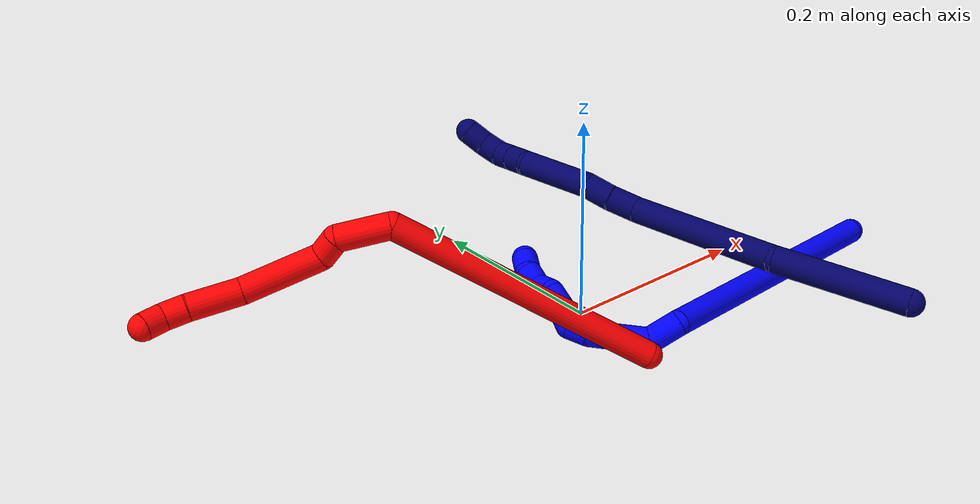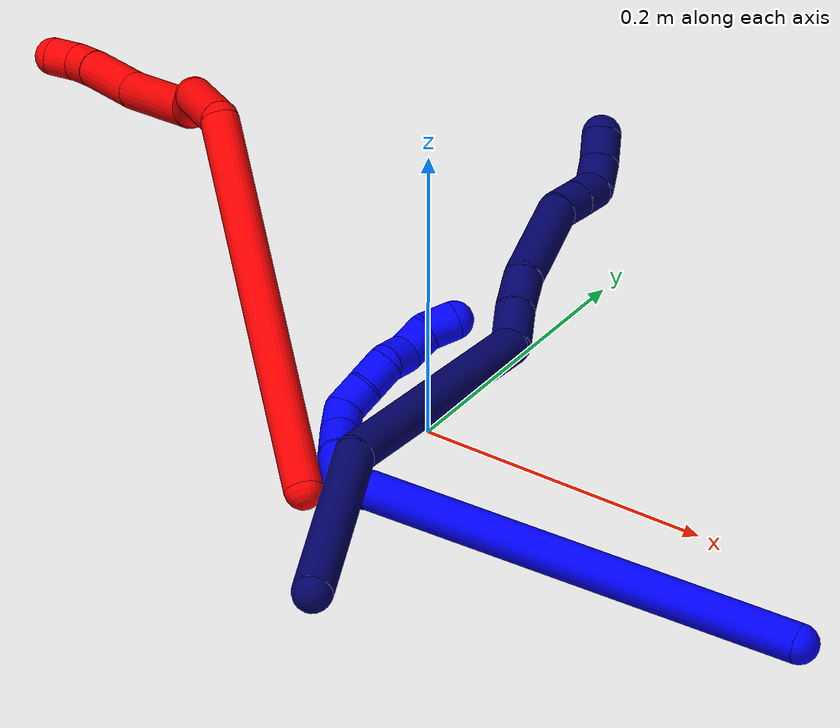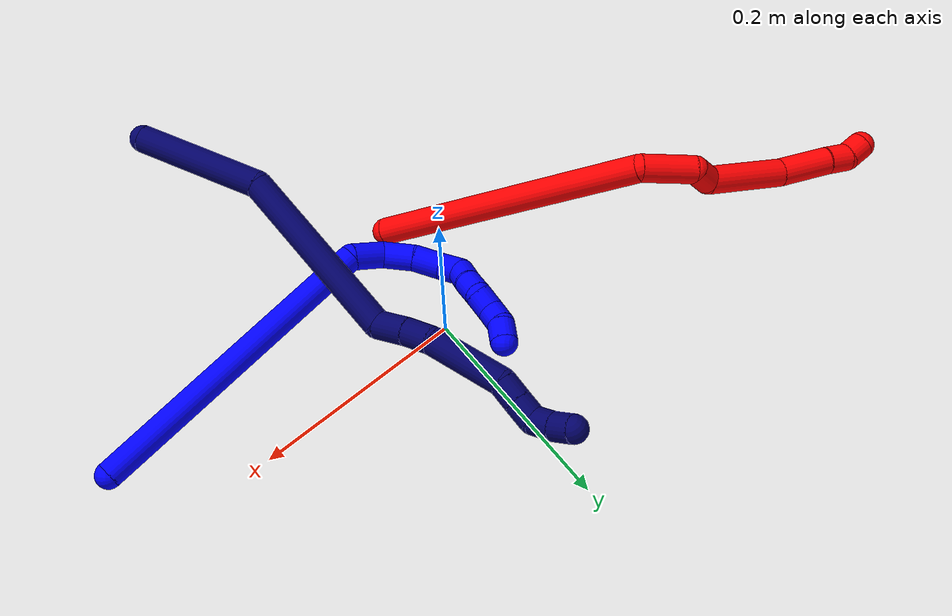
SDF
<sdf version="1.7">
 <world name="default">
  <model name="1">
   <static>0</static>
   <link name="1">
    <collision name="collision-cylinder-e_1_1_4">
     <pose>-0.132751 -0.024175 0.053975 0.421101 -1.15168 -0.275749</pose>
     <geometry><cylinder><radius>0.0125</radius><length>0.290659</length></cylinder></geometry>
     <surface>
      <friction><ode><mu>1.16</mu><mu2>1.16</mu2><slip1>0</slip1><slip2>0</slip2></ode></friction>
      <contact><ode><kp>1e+06</kp><kd>1</kd><max_vel>0</max_vel><min_depth>0.001</min_depth></ode></contact>
     </surface>
    </collision>
    <visual name="visual-cylinder-e_1_1_4">
     <pose>-0.132751 -0.024175 0.053975 0.421101 -1.15168 -0.275749</pose>
     <geometry><cylinder><radius>0.0125</radius><length>0.290659</length></cylinder></geometry>
     <material><ambient>0 0 1 1</ambient></material>
    </visual>
    <collision name="collision-cylinder-e_2_4_5">
     <pose>-0.278206 -0.040767 0.114553 -0.854375 -0.901256 0.433577</pose>
     <geometry><cylinder><radius>0.0125</radius><length>0.032402</length></cylinder></geometry>
     <surface>
      <friction><ode><mu>1.16</mu><mu2>1.16</mu2><slip1>0</slip1><slip2>0</slip2></ode></friction>
      <contact><ode><kp>1e+06</kp><kd>1</kd><max_vel>0</max_vel><min_depth>0.001</min_depth></ode></contact>
     </surface>
    </collision>
    <visual name="visual-cylinder-e_2_4_5">
     <pose>-0.278206 -0.040767 0.114553 -0.854375 -0.901256 0.433577</pose>
     <geometry><cylinder><radius>0.0125</radius><length>0.032402</length></cylinder></geometry>
     <material><ambient>0 0 1 1</ambient></material>
    </visual>
    <collision name="collision-cylinder-e_3_5_6">
     <pose>-0.296233 -0.028298 0.134422 -0.352922 -0.360136 0.064898</pose>
     <geometry><cylinder><radius>0.0125</radius><length>0.030214</length></cylinder></geometry>
     <surface>
      <friction><ode><mu>1.16</mu><mu2>1.16</mu2><slip1>0</slip1><slip2>0</slip2></ode></friction>
      <contact><ode><kp>1e+06</kp><kd>1</kd><max_vel>0</max_vel><min_depth>0.001</min_depth></ode></contact>
     </surface>
    </collision>
    <visual name="visual-cylinder-e_3_5_6">
     <pose>-0.296233 -0.028298 0.134422 -0.352922 -0.360136 0.064898</pose>
     <geometry><cylinder><radius>0.0125</radius><length>0.030214</length></cylinder></geometry>
     <material><ambient>0 0 1 1</ambient></material>
    </visual>
    <collision name="collision-cylinder-e_4_6_7">
     <pose>-0.304588 -0.017132 0.158942 -0.508985 -0.231061 0.060357</pose>
     <geometry><cylinder><radius>0.0125</radius><length>0.026478</length></cylinder></geometry>
     <surface>
      <friction><ode><mu>1.16</mu><mu2>1.16</mu2><slip1>0</slip1><slip2>0</slip2></ode></friction>
      <contact><ode><kp>1e+06</kp><kd>1</kd><max_vel>0</max_vel><min_depth>0.001</min_depth></ode></contact>
     </surface>
    </collision>
    <visual name="visual-cylinder-e_4_6_7">
     <pose>-0.304588 -0.017132 0.158942 -0.508985 -0.231061 0.060357</pose>
     <geometry><cylinder><radius>0.0125</radius><length>0.026478</length></cylinder></geometry>
     <material><ambient>0 0 1 1</ambient></material>
    </visual>
    <collision name="collision-cylinder-e_5_7_8">
     <pose>-0.308412 -0.007936 0.179829 -0.293901 -0.078516 0.011628</pose>
     <geometry><cylinder><radius>0.0125</radius><length>0.020192</length></cylinder></geometry>
     <surface>
      <friction><ode><mu>1.16</mu><mu2>1.16</mu2><slip1>0</slip1><slip2>0</slip2></ode></friction>
      <contact><ode><kp>1e+06</kp><kd>1</kd><max_vel>0</max_vel><min_depth>0.001</min_depth></ode></contact>
     </surface>
    </collision>
    <visual name="visual-cylinder-e_5_7_8">
     <pose>-0.308412 -0.007936 0.179829 -0.293901 -0.078516 0.011628</pose>
     <geometry><cylinder><radius>0.0125</radius><length>0.020192</length></cylinder></geometry>
     <material><ambient>0 0 1 1</ambient></material>
    </visual>
    <collision name="collision-cylinder-e_6_8_9">
     <pose>-0.30292 -0.004385 0.197247 -0.08153 0.677472 -0.028738</pose>
     <geometry><cylinder><radius>0.0125</radius><length>0.020049</length></cylinder></geometry>
     <surface>
      <friction><ode><mu>1.16</mu><mu2>1.16</mu2><slip1>0</slip1><slip2>0</slip2></ode></friction>
      <contact><ode><kp>1e+06</kp><kd>1</kd><max_vel>0</max_vel><min_depth>0.001</min_depth></ode></contact>
     </surface>
    </collision>
    <visual name="visual-cylinder-e_6_8_9">
     <pose>-0.30292 -0.004385 0.197247 -0.08153 0.677472 -0.028738</pose>
     <geometry><cylinder><radius>0.0125</radius><length>0.020049</length></cylinder></geometry>
     <material><ambient>0 0 1 1</ambient></material>
    </visual>
    <collision name="collision-cylinder-e_7_9_10">
     <pose>-0.291302 -0.001792 0.213264 -0.233303 0.562512 -0.067686</pose>
     <geometry><cylinder><radius>0.0125</radius><length>0.020006</length></cylinder></geometry>
     <surface>
      <friction><ode><mu>1.16</mu><mu2>1.16</mu2><slip1>0</slip1><slip2>0</slip2></ode></friction>
      <contact><ode><kp>1e+06</kp><kd>1</kd><max_vel>0</max_vel><min_depth>0.001</min_depth></ode></contact>
     </surface>
    </collision>
    <visual name="visual-cylinder-e_7_9_10">
     <pose>-0.291302 -0.001792 0.213264 -0.233303 0.562512 -0.067686</pose>
     <geometry><cylinder><radius>0.0125</radius><length>0.020006</length></cylinder></geometry>
     <material><ambient>0 0 1 1</ambient></material>
    </visual>
    <collision name="collision-cylinder-e_8_10_11">
     <pose>-0.283 0.006992 0.228174 -0.796558 0.301275 -0.12756</pose>
     <geometry><cylinder><radius>0.0125</radius><length>0.02</length></cylinder></geometry>
     <surface>
      <friction><ode><mu>1.16</mu><mu2>1.16</mu2><slip1>0</slip1><slip2>0</slip2></ode></friction>
      <contact><ode><kp>1e+06</kp><kd>1</kd><max_vel>0</max_vel><min_depth>0.001</min_depth></ode></contact>
     </surface>
    </collision>
    <visual name="visual-cylinder-e_8_10_11">
     <pose>-0.283 0.006992 0.228174 -0.796558 0.301275 -0.12756</pose>
     <geometry><cylinder><radius>0.0125</radius><length>0.02</length></cylinder></geometry>
     <material><ambient>0 0 1 1</ambient></material>
    </visual>
    <collision name="collision-cylinder-e_9_11_12">
     <pose>-0.274444 0.015994 0.242853 -0.265373 0.592956 -0.0815</pose>
     <geometry><cylinder><radius>0.0125</radius><length>0.02</length></cylinder></geometry>
     <surface>
      <friction><ode><mu>1.16</mu><mu2>1.16</mu2><slip1>0</slip1><slip2>0</slip2></ode></friction>
      <contact><ode><kp>1e+06</kp><kd>1</kd><max_vel>0</max_vel><min_depth>0.001</min_depth></ode></contact>
     </surface>
    </collision>
    <visual name="visual-cylinder-e_9_11_12">
     <pose>-0.274444 0.015994 0.242853 -0.265373 0.592956 -0.0815</pose>
     <geometry><cylinder><radius>0.0125</radius><length>0.02</length></cylinder></geometry>
     <material><ambient>0 0 1 1</ambient></material>
    </visual>
    <collision name="collision-cylinder-e_10_12_2">
     <pose>-0.261043 0.021848 0.255899 -0.630177 0.896648 -0.311023</pose>
     <geometry><cylinder><radius>0.0125</radius><length>0.02</length></cylinder></geometry>
     <surface>
      <friction><ode><mu>1.16</mu><mu2>1.16</mu2><slip1>0</slip1><slip2>0</slip2></ode></friction>
      <contact><ode><kp>1e+06</kp><kd>1</kd><max_vel>0</max_vel><min_depth>0.001</min_depth></ode></contact>
     </surface>
    </collision>
    <visual name="visual-cylinder-e_10_12_2">
     <pose>-0.261043 0.021848 0.255899 -0.630177 0.896648 -0.311023</pose>
     <geometry><cylinder><radius>0.0125</radius><length>0.02</length></cylinder></geometry>
     <material><ambient>0 0 1 1</ambient></material>
    </visual>
    <collision name="collision-sphere-2">
     <pose>-0.253231 0.025526 0.260943 0 -0 0</pose>
     <geometry><sphere><radius>0.0125</radius></sphere></geometry>
     <surface>
      <friction><ode><mu>1.16</mu><mu2>1.16</mu2><slip1>0</slip1><slip2>0</slip2></ode></friction>
      <contact><ode><kp>1e+06</kp><kd>1</kd><max_vel>0</max_vel><min_depth>0.001</min_depth></ode></contact>
     </surface>
    </collision>
    <visual name="visual-sphere-2">
     <pose>-0.253231 0.025526 0.260943 0 -0 0</pose>
     <geometry><sphere><radius>0.0125</radius></sphere></geometry>
     <material><ambient>0 0 1 1</ambient></material>
    </visual>
    <collision name="collision-sphere-12">
     <pose>-0.268856 0.018169 0.250856 0 -0 0</pose>
     <geometry><sphere><radius>0.0125</radius></sphere></geometry>
     <surface>
      <friction><ode><mu>1.16</mu><mu2>1.16</mu2><slip1>0</slip1><slip2>0</slip2></ode></friction>
      <contact><ode><kp>1e+06</kp><kd>1</kd><max_vel>0</max_vel><min_depth>0.001</min_depth></ode></contact>
     </surface>
    </collision>
    <visual name="visual-sphere-12">
     <pose>-0.268856 0.018169 0.250856 0 -0 0</pose>
     <geometry><sphere><radius>0.0125</radius></sphere></geometry>
     <material><ambient>0 0 1 1</ambient></material>
    </visual>
    <collision name="collision-sphere-11">
     <pose>-0.280032 0.013819 0.23485 0 -0 0</pose>
     <geometry><sphere><radius>0.0125</radius></sphere></geometry>
     <surface>
      <friction><ode><mu>1.16</mu><mu2>1.16</mu2><slip1>0</slip1><slip2>0</slip2></ode></friction>
      <contact><ode><kp>1e+06</kp><kd>1</kd><max_vel>0</max_vel><min_depth>0.001</min_depth></ode></contact>
     </surface>
    </collision>
    <visual name="visual-sphere-11">
     <pose>-0.280032 0.013819 0.23485 0 -0 0</pose>
     <geometry><sphere><radius>0.0125</radius></sphere></geometry>
     <material><ambient>0 0 1 1</ambient></material>
    </visual>
    <collision name="collision-sphere-10">
     <pose>-0.285967 0.000164 0.221497 0 -0 0</pose>
     <geometry><sphere><radius>0.0125</radius></sphere></geometry>
     <surface>
      <friction><ode><mu>1.16</mu><mu2>1.16</mu2><slip1>0</slip1><slip2>0</slip2></ode></friction>
      <contact><ode><kp>1e+06</kp><kd>1</kd><max_vel>0</max_vel><min_depth>0.001</min_depth></ode></contact>
     </surface>
    </collision>
    <visual name="visual-sphere-10">
     <pose>-0.285967 0.000164 0.221497 0 -0 0</pose>
     <geometry><sphere><radius>0.0125</radius></sphere></geometry>
     <material><ambient>0 0 1 1</ambient></material>
    </visual>
    <collision name="collision-sphere-9">
     <pose>-0.296637 -0.003748 0.205032 0 -0 0</pose>
     <geometry><sphere><radius>0.0125</radius></sphere></geometry>
     <surface>
      <friction><ode><mu>1.16</mu><mu2>1.16</mu2><slip1>0</slip1><slip2>0</slip2></ode></friction>
      <contact><ode><kp>1e+06</kp><kd>1</kd><max_vel>0</max_vel><min_depth>0.001</min_depth></ode></contact>
     </surface>
    </collision>
    <visual name="visual-sphere-9">
     <pose>-0.296637 -0.003748 0.205032 0 -0 0</pose>
     <geometry><sphere><radius>0.0125</radius></sphere></geometry>
     <material><ambient>0 0 1 1</ambient></material>
    </visual>
    <collision name="collision-sphere-4">
     <pose>-0.265503 -0.04835 0.10795 0 -0 0</pose>
     <geometry><sphere><radius>0.0125</radius></sphere></geometry>
     <surface>
      <friction><ode><mu>1.16</mu><mu2>1.16</mu2><slip1>0</slip1><slip2>0</slip2></ode></friction>
      <contact><ode><kp>1e+06</kp><kd>1</kd><max_vel>0</max_vel><min_depth>0.001</min_depth></ode></contact>
     </surface>
    </collision>
    <visual name="visual-sphere-4">
     <pose>-0.265503 -0.04835 0.10795 0 -0 0</pose>
     <geometry><sphere><radius>0.0125</radius></sphere></geometry>
     <material><ambient>0 0 1 1</ambient></material>
    </visual>
    <collision name="collision-sphere-1">
     <geometry><sphere><radius>0.0125</radius></sphere></geometry>
     <surface>
      <friction><ode><mu>1.16</mu><mu2>1.16</mu2><slip1>0</slip1><slip2>0</slip2></ode></friction>
      <contact><ode><kp>1e+06</kp><kd>1</kd><max_vel>0</max_vel><min_depth>0.001</min_depth></ode></contact>
     </surface>
    </collision>
    <visual name="visual-sphere-1">
     <geometry><sphere><radius>0.0125</radius></sphere></geometry>
     <material><ambient>0 0 1 1</ambient></material>
    </visual>
    <collision name="collision-sphere-8">
     <pose>-0.309204 -0.005021 0.189462 0 -0 0</pose>
     <geometry><sphere><radius>0.0125</radius></sphere></geometry>
     <surface>
      <friction><ode><mu>1.16</mu><mu2>1.16</mu2><slip1>0</slip1><slip2>0</slip2></ode></friction>
      <contact><ode><kp>1e+06</kp><kd>1</kd><max_vel>0</max_vel><min_depth>0.001</min_depth></ode></contact>
     </surface>
    </collision>
    <visual name="visual-sphere-8">
     <pose>-0.309204 -0.005021 0.189462 0 -0 0</pose>
     <geometry><sphere><radius>0.0125</radius></sphere></geometry>
     <material><ambient>0 0 1 1</ambient></material>
    </visual>
    <collision name="collision-sphere-5">
     <pose>-0.290909 -0.033185 0.121156 0 -0 0</pose>
     <geometry><sphere><radius>0.0125</radius></sphere></geometry>
     <surface>
      <friction><ode><mu>1.16</mu><mu2>1.16</mu2><slip1>0</slip1><slip2>0</slip2></ode></friction>
      <contact><ode><kp>1e+06</kp><kd>1</kd><max_vel>0</max_vel><min_depth>0.001</min_depth></ode></contact>
     </surface>
    </collision>
    <visual name="visual-sphere-5">
     <pose>-0.290909 -0.033185 0.121156 0 -0 0</pose>
     <geometry><sphere><radius>0.0125</radius></sphere></geometry>
     <material><ambient>0 0 1 1</ambient></material>
    </visual>
    <collision name="collision-sphere-6">
     <pose>-0.301556 -0.023411 0.147689 0 -0 0</pose>
     <geometry><sphere><radius>0.0125</radius></sphere></geometry>
     <surface>
      <friction><ode><mu>1.16</mu><mu2>1.16</mu2><slip1>0</slip1><slip2>0</slip2></ode></friction>
      <contact><ode><kp>1e+06</kp><kd>1</kd><max_vel>0</max_vel><min_depth>0.001</min_depth></ode></contact>
     </surface>
    </collision>
    <visual name="visual-sphere-6">
     <pose>-0.301556 -0.023411 0.147689 0 -0 0</pose>
     <geometry><sphere><radius>0.0125</radius></sphere></geometry>
     <material><ambient>0 0 1 1</ambient></material>
    </visual>
    <collision name="collision-sphere-7">
     <pose>-0.30762 -0.010852 0.170196 0 -0 0</pose>
     <geometry><sphere><radius>0.0125</radius></sphere></geometry>
     <surface>
      <friction><ode><mu>1.16</mu><mu2>1.16</mu2><slip1>0</slip1><slip2>0</slip2></ode></friction>
      <contact><ode><kp>1e+06</kp><kd>1</kd><max_vel>0</max_vel><min_depth>0.001</min_depth></ode></contact>
     </surface>
    </collision>
    <visual name="visual-sphere-7">
     <pose>-0.30762 -0.010852 0.170196 0 -0 0</pose>
     <geometry><sphere><radius>0.0125</radius></sphere></geometry>
     <material><ambient>0 0 1 1</ambient></material>
    </visual>
    <inertial>
     <pose>-0.198227 -0.018087 0.108122 0 -0 0</pose>
     <mass>0.5</mass>
     <inertia>
      <ixx>0.000574</ixx>
      <ixy>0</ixy>
      <ixz>0</ixz>
      <iyy>0.001808</iyy>
      <iyz>0</iyz>
      <izz>0.002236</izz>
     </inertia>
    </inertial>
   </link>
   <pose>0.317229 -0.073567 0.011499 -1.0268 -0.303483 0.334996</pose>
  </model>
  <model name="2">
   <static>0</static>
   <link name="2">
    <collision name="collision-cylinder-e_1_1_4">
     <pose>0.002095 0.003672 0.131326 -0.027955 0.015947 -0.000223</pose>
     <geometry><cylinder><radius>0.0125</radius><length>0.262789</length></cylinder></geometry>
     <surface>
      <friction><ode><mu>1.16</mu><mu2>1.16</mu2><slip1>0</slip1><slip2>0</slip2></ode></friction>
      <contact><ode><kp>1e+06</kp><kd>1</kd><max_vel>0</max_vel><min_depth>0.001</min_depth></ode></contact>
     </surface>
    </collision>
    <visual name="visual-cylinder-e_1_1_4">
     <pose>0.002095 0.003672 0.131326 -0.027955 0.015947 -0.000223</pose>
     <geometry><cylinder><radius>0.0125</radius><length>0.262789</length></cylinder></geometry>
     <material><ambient>1 0 0 1</ambient></material>
    </visual>
    <collision name="collision-cylinder-e_2_4_5">
     <pose>-0.009186 0.017567 0.281115 -0.505676 -0.564937 0.149691</pose>
     <geometry><cylinder><radius>0.0125</radius><length>0.049973</length></cylinder></geometry>
     <surface>
      <friction><ode><mu>1.16</mu><mu2>1.16</mu2><slip1>0</slip1><slip2>0</slip2></ode></friction>
      <contact><ode><kp>1e+06</kp><kd>1</kd><max_vel>0</max_vel><min_depth>0.001</min_depth></ode></contact>
     </surface>
    </collision>
    <visual name="visual-cylinder-e_2_4_5">
     <pose>-0.009186 0.017567 0.281115 -0.505676 -0.564937 0.149691</pose>
     <geometry><cylinder><radius>0.0125</radius><length>0.049973</length></cylinder></geometry>
     <material><ambient>1 0 0 1</ambient></material>
    </visual>
    <collision name="collision-cylinder-e_3_5_6">
     <pose>-0.030309 0.035781 0.300896 -1.40737 -0.763167 0.65638</pose>
     <geometry><cylinder><radius>0.0125</radius><length>0.022414</length></cylinder></geometry>
     <surface>
      <friction><ode><mu>1.16</mu><mu2>1.16</mu2><slip1>0</slip1><slip2>0</slip2></ode></friction>
      <contact><ode><kp>1e+06</kp><kd>1</kd><max_vel>0</max_vel><min_depth>0.001</min_depth></ode></contact>
     </surface>
    </collision>
    <visual name="visual-cylinder-e_3_5_6">
     <pose>-0.030309 0.035781 0.300896 -1.40737 -0.763167 0.65638</pose>
     <geometry><cylinder><radius>0.0125</radius><length>0.022414</length></cylinder></geometry>
     <material><ambient>1 0 0 1</ambient></material>
    </visual>
    <collision name="collision-cylinder-e_4_6_7">
     <pose>-0.064337 0.05533 0.326108 -0.450535 -0.780441 0.187955</pose>
     <geometry><cylinder><radius>0.0125</radius><length>0.074706</length></cylinder></geometry>
     <surface>
      <friction><ode><mu>1.16</mu><mu2>1.16</mu2><slip1>0</slip1><slip2>0</slip2></ode></friction>
      <contact><ode><kp>1e+06</kp><kd>1</kd><max_vel>0</max_vel><min_depth>0.001</min_depth></ode></contact>
     </surface>
    </collision>
    <visual name="visual-cylinder-e_4_6_7">
     <pose>-0.064337 0.05533 0.326108 -0.450535 -0.780441 0.187955</pose>
     <geometry><cylinder><radius>0.0125</radius><length>0.074706</length></cylinder></geometry>
     <material><ambient>1 0 0 1</ambient></material>
    </visual>
    <collision name="collision-cylinder-e_5_7_8">
     <pose>-0.10648 0.071139 0.367722 -0.235461 -0.716264 0.088478</pose>
     <geometry><cylinder><radius>0.0125</radius><length>0.048317</length></cylinder></geometry>
     <surface>
      <friction><ode><mu>1.16</mu><mu2>1.16</mu2><slip1>0</slip1><slip2>0</slip2></ode></friction>
      <contact><ode><kp>1e+06</kp><kd>1</kd><max_vel>0</max_vel><min_depth>0.001</min_depth></ode></contact>
     </surface>
    </collision>
    <visual name="visual-cylinder-e_5_7_8">
     <pose>-0.10648 0.071139 0.367722 -0.235461 -0.716264 0.088478</pose>
     <geometry><cylinder><radius>0.0125</radius><length>0.048317</length></cylinder></geometry>
     <material><ambient>1 0 0 1</ambient></material>
    </visual>
    <collision name="collision-cylinder-e_6_8_9">
     <pose>-0.129898 0.078069 0.392782 -0.349966 -0.768573 0.142743</pose>
     <geometry><cylinder><radius>0.0125</radius><length>0.021742</length></cylinder></geometry>
     <surface>
      <friction><ode><mu>1.16</mu><mu2>1.16</mu2><slip1>0</slip1><slip2>0</slip2></ode></friction>
      <contact><ode><kp>1e+06</kp><kd>1</kd><max_vel>0</max_vel><min_depth>0.001</min_depth></ode></contact>
     </surface>
    </collision>
    <visual name="visual-cylinder-e_6_8_9">
     <pose>-0.129898 0.078069 0.392782 -0.349966 -0.768573 0.142743</pose>
     <geometry><cylinder><radius>0.0125</radius><length>0.021742</length></cylinder></geometry>
     <material><ambient>1 0 0 1</ambient></material>
    </visual>
    <collision name="collision-cylinder-e_7_9_2">
     <pose>-0.14535 0.079086 0.406082 0.272079 -0.906123 -0.133084</pose>
     <geometry><cylinder><radius>0.0125</radius><length>0.02006</length></cylinder></geometry>
     <surface>
      <friction><ode><mu>1.16</mu><mu2>1.16</mu2><slip1>0</slip1><slip2>0</slip2></ode></friction>
      <contact><ode><kp>1e+06</kp><kd>1</kd><max_vel>0</max_vel><min_depth>0.001</min_depth></ode></contact>
     </surface>
    </collision>
    <visual name="visual-cylinder-e_7_9_2">
     <pose>-0.14535 0.079086 0.406082 0.272079 -0.906123 -0.133084</pose>
     <geometry><cylinder><radius>0.0125</radius><length>0.02006</length></cylinder></geometry>
     <material><ambient>1 0 0 1</ambient></material>
    </visual>
    <collision name="collision-sphere-2">
     <pose>-0.153244 0.077424 0.412041 0 -0 0</pose>
     <geometry><sphere><radius>0.0125</radius></sphere></geometry>
     <surface>
      <friction><ode><mu>1.16</mu><mu2>1.16</mu2><slip1>0</slip1><slip2>0</slip2></ode></friction>
      <contact><ode><kp>1e+06</kp><kd>1</kd><max_vel>0</max_vel><min_depth>0.001</min_depth></ode></contact>
     </surface>
    </collision>
    <visual name="visual-sphere-2">
     <pose>-0.153244 0.077424 0.412041 0 -0 0</pose>
     <geometry><sphere><radius>0.0125</radius></sphere></geometry>
     <material><ambient>1 0 0 1</ambient></material>
    </visual>
    <collision name="collision-sphere-9">
     <pose>-0.137455 0.080749 0.400123 0 -0 0</pose>
     <geometry><sphere><radius>0.0125</radius></sphere></geometry>
     <surface>
      <friction><ode><mu>1.16</mu><mu2>1.16</mu2><slip1>0</slip1><slip2>0</slip2></ode></friction>
      <contact><ode><kp>1e+06</kp><kd>1</kd><max_vel>0</max_vel><min_depth>0.001</min_depth></ode></contact>
     </surface>
    </collision>
    <visual name="visual-sphere-9">
     <pose>-0.137455 0.080749 0.400123 0 -0 0</pose>
     <geometry><sphere><radius>0.0125</radius></sphere></geometry>
     <material><ambient>1 0 0 1</ambient></material>
    </visual>
    <collision name="collision-sphere-4">
     <pose>0.004191 0.007344 0.262653 0 -0 0</pose>
     <geometry><sphere><radius>0.0125</radius></sphere></geometry>
     <surface>
      <friction><ode><mu>1.16</mu><mu2>1.16</mu2><slip1>0</slip1><slip2>0</slip2></ode></friction>
      <contact><ode><kp>1e+06</kp><kd>1</kd><max_vel>0</max_vel><min_depth>0.001</min_depth></ode></contact>
     </surface>
    </collision>
    <visual name="visual-sphere-4">
     <pose>0.004191 0.007344 0.262653 0 -0 0</pose>
     <geometry><sphere><radius>0.0125</radius></sphere></geometry>
     <material><ambient>1 0 0 1</ambient></material>
    </visual>
    <collision name="collision-sphere-1">
     <geometry><sphere><radius>0.0125</radius></sphere></geometry>
     <surface>
      <friction><ode><mu>1.16</mu><mu2>1.16</mu2><slip1>0</slip1><slip2>0</slip2></ode></friction>
      <contact><ode><kp>1e+06</kp><kd>1</kd><max_vel>0</max_vel><min_depth>0.001</min_depth></ode></contact>
     </surface>
    </collision>
    <visual name="visual-sphere-1">
     <geometry><sphere><radius>0.0125</radius></sphere></geometry>
     <material><ambient>1 0 0 1</ambient></material>
    </visual>
    <collision name="collision-sphere-8">
     <pose>-0.122342 0.07539 0.38544 0 -0 0</pose>
     <geometry><sphere><radius>0.0125</radius></sphere></geometry>
     <surface>
      <friction><ode><mu>1.16</mu><mu2>1.16</mu2><slip1>0</slip1><slip2>0</slip2></ode></friction>
      <contact><ode><kp>1e+06</kp><kd>1</kd><max_vel>0</max_vel><min_depth>0.001</min_depth></ode></contact>
     </surface>
    </collision>
    <visual name="visual-sphere-8">
     <pose>-0.122342 0.07539 0.38544 0 -0 0</pose>
     <geometry><sphere><radius>0.0125</radius></sphere></geometry>
     <material><ambient>1 0 0 1</ambient></material>
    </visual>
    <collision name="collision-sphere-5">
     <pose>-0.022563 0.02779 0.299578 0 -0 0</pose>
     <geometry><sphere><radius>0.0125</radius></sphere></geometry>
     <surface>
      <friction><ode><mu>1.16</mu><mu2>1.16</mu2><slip1>0</slip1><slip2>0</slip2></ode></friction>
      <contact><ode><kp>1e+06</kp><kd>1</kd><max_vel>0</max_vel><min_depth>0.001</min_depth></ode></contact>
     </surface>
    </collision>
    <visual name="visual-sphere-5">
     <pose>-0.022563 0.02779 0.299578 0 -0 0</pose>
     <geometry><sphere><radius>0.0125</radius></sphere></geometry>
     <material><ambient>1 0 0 1</ambient></material>
    </visual>
    <collision name="collision-sphere-6">
     <pose>-0.038056 0.043772 0.302214 0 -0 0</pose>
     <geometry><sphere><radius>0.0125</radius></sphere></geometry>
     <surface>
      <friction><ode><mu>1.16</mu><mu2>1.16</mu2><slip1>0</slip1><slip2>0</slip2></ode></friction>
      <contact><ode><kp>1e+06</kp><kd>1</kd><max_vel>0</max_vel><min_depth>0.001</min_depth></ode></contact>
     </surface>
    </collision>
    <visual name="visual-sphere-6">
     <pose>-0.038056 0.043772 0.302214 0 -0 0</pose>
     <geometry><sphere><radius>0.0125</radius></sphere></geometry>
     <material><ambient>1 0 0 1</ambient></material>
    </visual>
    <collision name="collision-sphere-7">
     <pose>-0.090618 0.066888 0.350003 0 -0 0</pose>
     <geometry><sphere><radius>0.0125</radius></sphere></geometry>
     <surface>
      <friction><ode><mu>1.16</mu><mu2>1.16</mu2><slip1>0</slip1><slip2>0</slip2></ode></friction>
      <contact><ode><kp>1e+06</kp><kd>1</kd><max_vel>0</max_vel><min_depth>0.001</min_depth></ode></contact>
     </surface>
    </collision>
    <visual name="visual-sphere-7">
     <pose>-0.090618 0.066888 0.350003 0 -0 0</pose>
     <geometry><sphere><radius>0.0125</radius></sphere></geometry>
     <material><ambient>1 0 0 1</ambient></material>
    </visual>
    <inertial>
     <pose>-0.032558 0.026999 0.228237 0 -0 0</pose>
     <mass>0.5</mass>
     <inertia>
      <ixx>0.001566</ixx>
      <ixy>0</ixy>
      <ixz>0</ixz>
      <iyy>0.001598</iyy>
      <iyz>0</iyz>
      <izz>-1.1e-05</izz>
     </inertia>
    </inertial>
   </link>
   <pose>-0.016627 -0.109858 0.011491 -0.868987 -0.664567 0.40523</pose>
  </model>
  <model name="7">
   <static>0</static>
   <link name="7">
    <collision name="collision-cylinder-e_1_1_4">
     <pose>-0.021468 0.050949 -0.027758 -2.06966 -0.354388 0.585641</pose>
     <geometry><cylinder><radius>0.0125</radius><length>0.123728</length></cylinder></geometry>
     <surface>
      <friction><ode><mu>1.16</mu><mu2>1.16</mu2><slip1>0</slip1><slip2>0</slip2></ode></friction>
      <contact><ode><kp>1e+06</kp><kd>1</kd><max_vel>0</max_vel><min_depth>0.001</min_depth></ode></contact>
     </surface>
    </collision>
    <visual name="visual-cylinder-e_1_1_4">
     <pose>-0.021468 0.050949 -0.027758 -2.06966 -0.354388 0.585641</pose>
     <geometry><cylinder><radius>0.0125</radius><length>0.123728</length></cylinder></geometry>
     <material><ambient>0.003922 0 0.403922 1</ambient></material>
    </visual>
    <collision name="collision-cylinder-e_2_4_5">
     <pose>-0.03861 0.167063 -0.109391 -2.26163 0.05111 -0.108487</pose>
     <geometry><cylinder><radius>0.0125</radius><length>0.169325</length></cylinder></geometry>
     <surface>
      <friction><ode><mu>1.16</mu><mu2>1.16</mu2><slip1>0</slip1><slip2>0</slip2></ode></friction>
      <contact><ode><kp>1e+06</kp><kd>1</kd><max_vel>0</max_vel><min_depth>0.001</min_depth></ode></contact>
     </surface>
    </collision>
    <visual name="visual-cylinder-e_2_4_5">
     <pose>-0.03861 0.167063 -0.109391 -2.26163 0.05111 -0.108487</pose>
     <geometry><cylinder><radius>0.0125</radius><length>0.169325</length></cylinder></geometry>
     <material><ambient>0.003922 0 0.403922 1</ambient></material>
    </visual>
    <collision name="collision-cylinder-e_3_5_6">
     <pose>-0.040294 0.244646 -0.167218 -1.87902 -0.432026 0.583192</pose>
     <geometry><cylinder><radius>0.0125</radius><length>0.028699</length></cylinder></geometry>
     <surface>
      <friction><ode><mu>1.16</mu><mu2>1.16</mu2><slip1>0</slip1><slip2>0</slip2></ode></friction>
      <contact><ode><kp>1e+06</kp><kd>1</kd><max_vel>0</max_vel><min_depth>0.001</min_depth></ode></contact>
     </surface>
    </collision>
    <visual name="visual-cylinder-e_3_5_6">
     <pose>-0.040294 0.244646 -0.167218 -1.87902 -0.432026 0.583192</pose>
     <geometry><cylinder><radius>0.0125</radius><length>0.028699</length></cylinder></geometry>
     <material><ambient>0.003922 0 0.403922 1</ambient></material>
    </visual>
    <collision name="collision-cylinder-e_4_6_7">
     <pose>-0.05042 0.268984 -0.174605 -1.85121 -0.320502 0.423092</pose>
     <geometry><cylinder><radius>0.0125</radius><length>0.026142</length></cylinder></geometry>
     <surface>
      <friction><ode><mu>1.16</mu><mu2>1.16</mu2><slip1>0</slip1><slip2>0</slip2></ode></friction>
      <contact><ode><kp>1e+06</kp><kd>1</kd><max_vel>0</max_vel><min_depth>0.001</min_depth></ode></contact>
     </surface>
    </collision>
    <visual name="visual-cylinder-e_4_6_7">
     <pose>-0.05042 0.268984 -0.174605 -1.85121 -0.320502 0.423092</pose>
     <geometry><cylinder><radius>0.0125</radius><length>0.026142</length></cylinder></geometry>
     <material><ambient>0.003922 0 0.403922 1</ambient></material>
    </visual>
    <collision name="collision-cylinder-e_5_7_8">
     <pose>-0.06265 0.310751 -0.195504 -2.10025 -0.230408 0.39823</pose>
     <geometry><cylinder><radius>0.0125</radius><length>0.071039</length></cylinder></geometry>
     <surface>
      <friction><ode><mu>1.16</mu><mu2>1.16</mu2><slip1>0</slip1><slip2>0</slip2></ode></friction>
      <contact><ode><kp>1e+06</kp><kd>1</kd><max_vel>0</max_vel><min_depth>0.001</min_depth></ode></contact>
     </surface>
    </collision>
    <visual name="visual-cylinder-e_5_7_8">
     <pose>-0.06265 0.310751 -0.195504 -2.10025 -0.230408 0.39823</pose>
     <geometry><cylinder><radius>0.0125</radius><length>0.071039</length></cylinder></geometry>
     <material><ambient>0.003922 0 0.403922 1</ambient></material>
    </visual>
    <collision name="collision-cylinder-e_6_8_9">
     <pose>-0.069775 0.348476 -0.219706 -2.27826 0.094894 -0.205436</pose>
     <geometry><cylinder><radius>0.0125</radius><length>0.020827</length></cylinder></geometry>
     <surface>
      <friction><ode><mu>1.16</mu><mu2>1.16</mu2><slip1>0</slip1><slip2>0</slip2></ode></friction>
      <contact><ode><kp>1e+06</kp><kd>1</kd><max_vel>0</max_vel><min_depth>0.001</min_depth></ode></contact>
     </surface>
    </collision>
    <visual name="visual-cylinder-e_6_8_9">
     <pose>-0.069775 0.348476 -0.219706 -2.27826 0.094894 -0.205436</pose>
     <geometry><cylinder><radius>0.0125</radius><length>0.020827</length></cylinder></geometry>
     <material><ambient>0.003922 0 0.403922 1</ambient></material>
    </visual>
    <collision name="collision-cylinder-e_7_9_10">
     <pose>-0.068046 0.364 -0.232968 -2.27725 0.073739 -0.1596</pose>
     <geometry><cylinder><radius>0.0125</radius><length>0.020157</length></cylinder></geometry>
     <surface>
      <friction><ode><mu>1.16</mu><mu2>1.16</mu2><slip1>0</slip1><slip2>0</slip2></ode></friction>
      <contact><ode><kp>1e+06</kp><kd>1</kd><max_vel>0</max_vel><min_depth>0.001</min_depth></ode></contact>
     </surface>
    </collision>
    <visual name="visual-cylinder-e_7_9_10">
     <pose>-0.068046 0.364 -0.232968 -2.27725 0.073739 -0.1596</pose>
     <geometry><cylinder><radius>0.0125</radius><length>0.020157</length></cylinder></geometry>
     <material><ambient>0.003922 0 0.403922 1</ambient></material>
    </visual>
    <collision name="collision-cylinder-e_8_10_11">
     <pose>-0.070558 0.380959 -0.241156 -1.74755 -0.331396 0.394308</pose>
     <geometry><cylinder><radius>0.0125</radius><length>0.020009</length></cylinder></geometry>
     <surface>
      <friction><ode><mu>1.16</mu><mu2>1.16</mu2><slip1>0</slip1><slip2>0</slip2></ode></friction>
      <contact><ode><kp>1e+06</kp><kd>1</kd><max_vel>0</max_vel><min_depth>0.001</min_depth></ode></contact>
     </surface>
    </collision>
    <visual name="visual-cylinder-e_8_10_11">
     <pose>-0.070558 0.380959 -0.241156 -1.74755 -0.331396 0.394308</pose>
     <geometry><cylinder><radius>0.0125</radius><length>0.020009</length></cylinder></geometry>
     <material><ambient>0.003922 0 0.403922 1</ambient></material>
    </visual>
    <collision name="collision-cylinder-e_9_11_2">
     <pose>-0.077621 0.399558 -0.242821 -1.57096 -0.389097 0.389159</pose>
     <geometry><cylinder><radius>0.0125</radius><length>0.020074</length></cylinder></geometry>
     <surface>
      <friction><ode><mu>1.16</mu><mu2>1.16</mu2><slip1>0</slip1><slip2>0</slip2></ode></friction>
      <contact><ode><kp>1e+06</kp><kd>1</kd><max_vel>0</max_vel><min_depth>0.001</min_depth></ode></contact>
     </surface>
    </collision>
    <visual name="visual-cylinder-e_9_11_2">
     <pose>-0.077621 0.399558 -0.242821 -1.57096 -0.389097 0.389159</pose>
     <geometry><cylinder><radius>0.0125</radius><length>0.020074</length></cylinder></geometry>
     <material><ambient>0.003922 0 0.403922 1</ambient></material>
    </visual>
    <collision name="collision-sphere-2">
     <pose>-0.081428 0.408844 -0.242823 0 -0 0</pose>
     <geometry><sphere><radius>0.0125</radius></sphere></geometry>
     <surface>
      <friction><ode><mu>1.16</mu><mu2>1.16</mu2><slip1>0</slip1><slip2>0</slip2></ode></friction>
      <contact><ode><kp>1e+06</kp><kd>1</kd><max_vel>0</max_vel><min_depth>0.001</min_depth></ode></contact>
     </surface>
    </collision>
    <visual name="visual-sphere-2">
     <pose>-0.081428 0.408844 -0.242823 0 -0 0</pose>
     <geometry><sphere><radius>0.0125</radius></sphere></geometry>
     <material><ambient>0.003922 0 0.403922 1</ambient></material>
    </visual>
    <collision name="collision-sphere-11">
     <pose>-0.073813 0.390271 -0.24282 0 -0 0</pose>
     <geometry><sphere><radius>0.0125</radius></sphere></geometry>
     <surface>
      <friction><ode><mu>1.16</mu><mu2>1.16</mu2><slip1>0</slip1><slip2>0</slip2></ode></friction>
      <contact><ode><kp>1e+06</kp><kd>1</kd><max_vel>0</max_vel><min_depth>0.001</min_depth></ode></contact>
     </surface>
    </collision>
    <visual name="visual-sphere-11">
     <pose>-0.073813 0.390271 -0.24282 0 -0 0</pose>
     <geometry><sphere><radius>0.0125</radius></sphere></geometry>
     <material><ambient>0.003922 0 0.403922 1</ambient></material>
    </visual>
    <collision name="collision-sphere-10">
     <pose>-0.067303 0.371646 -0.239493 0 -0 0</pose>
     <geometry><sphere><radius>0.0125</radius></sphere></geometry>
     <surface>
      <friction><ode><mu>1.16</mu><mu2>1.16</mu2><slip1>0</slip1><slip2>0</slip2></ode></friction>
      <contact><ode><kp>1e+06</kp><kd>1</kd><max_vel>0</max_vel><min_depth>0.001</min_depth></ode></contact>
     </surface>
    </collision>
    <visual name="visual-sphere-10">
     <pose>-0.067303 0.371646 -0.239493 0 -0 0</pose>
     <geometry><sphere><radius>0.0125</radius></sphere></geometry>
     <material><ambient>0.003922 0 0.403922 1</ambient></material>
    </visual>
    <collision name="collision-sphere-9">
     <pose>-0.068788 0.356355 -0.226444 0 -0 0</pose>
     <geometry><sphere><radius>0.0125</radius></sphere></geometry>
     <surface>
      <friction><ode><mu>1.16</mu><mu2>1.16</mu2><slip1>0</slip1><slip2>0</slip2></ode></friction>
      <contact><ode><kp>1e+06</kp><kd>1</kd><max_vel>0</max_vel><min_depth>0.001</min_depth></ode></contact>
     </surface>
    </collision>
    <visual name="visual-sphere-9">
     <pose>-0.068788 0.356355 -0.226444 0 -0 0</pose>
     <geometry><sphere><radius>0.0125</radius></sphere></geometry>
     <material><ambient>0.003922 0 0.403922 1</ambient></material>
    </visual>
    <collision name="collision-sphere-4">
     <pose>-0.042936 0.101898 -0.055516 0 -0 0</pose>
     <geometry><sphere><radius>0.0125</radius></sphere></geometry>
     <surface>
      <friction><ode><mu>1.16</mu><mu2>1.16</mu2><slip1>0</slip1><slip2>0</slip2></ode></friction>
      <contact><ode><kp>1e+06</kp><kd>1</kd><max_vel>0</max_vel><min_depth>0.001</min_depth></ode></contact>
     </surface>
    </collision>
    <visual name="visual-sphere-4">
     <pose>-0.042936 0.101898 -0.055516 0 -0 0</pose>
     <geometry><sphere><radius>0.0125</radius></sphere></geometry>
     <material><ambient>0.003922 0 0.403922 1</ambient></material>
    </visual>
    <collision name="collision-sphere-1">
     <geometry><sphere><radius>0.0125</radius></sphere></geometry>
     <surface>
      <friction><ode><mu>1.16</mu><mu2>1.16</mu2><slip1>0</slip1><slip2>0</slip2></ode></friction>
      <contact><ode><kp>1e+06</kp><kd>1</kd><max_vel>0</max_vel><min_depth>0.001</min_depth></ode></contact>
     </surface>
    </collision>
    <visual name="visual-sphere-1">
     <geometry><sphere><radius>0.0125</radius></sphere></geometry>
     <material><ambient>0.003922 0 0.403922 1</ambient></material>
    </visual>
    <collision name="collision-sphere-8">
     <pose>-0.070761 0.340597 -0.212969 0 -0 0</pose>
     <geometry><sphere><radius>0.0125</radius></sphere></geometry>
     <surface>
      <friction><ode><mu>1.16</mu><mu2>1.16</mu2><slip1>0</slip1><slip2>0</slip2></ode></friction>
      <contact><ode><kp>1e+06</kp><kd>1</kd><max_vel>0</max_vel><min_depth>0.001</min_depth></ode></contact>
     </surface>
    </collision>
    <visual name="visual-sphere-8">
     <pose>-0.070761 0.340597 -0.212969 0 -0 0</pose>
     <geometry><sphere><radius>0.0125</radius></sphere></geometry>
     <material><ambient>0.003922 0 0.403922 1</ambient></material>
    </visual>
    <collision name="collision-sphere-5">
     <pose>-0.034285 0.232229 -0.163265 0 -0 0</pose>
     <geometry><sphere><radius>0.0125</radius></sphere></geometry>
     <surface>
      <friction><ode><mu>1.16</mu><mu2>1.16</mu2><slip1>0</slip1><slip2>0</slip2></ode></friction>
      <contact><ode><kp>1e+06</kp><kd>1</kd><max_vel>0</max_vel><min_depth>0.001</min_depth></ode></contact>
     </surface>
    </collision>
    <visual name="visual-sphere-5">
     <pose>-0.034285 0.232229 -0.163265 0 -0 0</pose>
     <geometry><sphere><radius>0.0125</radius></sphere></geometry>
     <material><ambient>0.003922 0 0.403922 1</ambient></material>
    </visual>
    <collision name="collision-sphere-6">
     <pose>-0.046302 0.257063 -0.171172 0 -0 0</pose>
     <geometry><sphere><radius>0.0125</radius></sphere></geometry>
     <surface>
      <friction><ode><mu>1.16</mu><mu2>1.16</mu2><slip1>0</slip1><slip2>0</slip2></ode></friction>
      <contact><ode><kp>1e+06</kp><kd>1</kd><max_vel>0</max_vel><min_depth>0.001</min_depth></ode></contact>
     </surface>
    </collision>
    <visual name="visual-sphere-6">
     <pose>-0.046302 0.257063 -0.171172 0 -0 0</pose>
     <geometry><sphere><radius>0.0125</radius></sphere></geometry>
     <material><ambient>0.003922 0 0.403922 1</ambient></material>
    </visual>
    <collision name="collision-sphere-7">
     <pose>-0.054538 0.280905 -0.178038 0 -0 0</pose>
     <geometry><sphere><radius>0.0125</radius></sphere></geometry>
     <surface>
      <friction><ode><mu>1.16</mu><mu2>1.16</mu2><slip1>0</slip1><slip2>0</slip2></ode></friction>
      <contact><ode><kp>1e+06</kp><kd>1</kd><max_vel>0</max_vel><min_depth>0.001</min_depth></ode></contact>
     </surface>
    </collision>
    <visual name="visual-sphere-7">
     <pose>-0.054538 0.280905 -0.178038 0 -0 0</pose>
     <geometry><sphere><radius>0.0125</radius></sphere></geometry>
     <material><ambient>0.003922 0 0.403922 1</ambient></material>
    </visual>
    <inertial>
     <pose>-0.043827 0.201916 -0.128361 0 -0 0</pose>
     <mass>0.5</mass>
     <inertia>
      <ixx>0.000624</ixx>
      <ixy>0</ixy>
      <ixz>0</ixz>
      <iyy>-0.000224</iyy>
      <iyz>0</iyz>
      <izz>-0.000461</izz>
     </inertia>
    </inertial>
   </link>
   <pose>0.117585 -0.287746 0.093247 0.607166 0.036547 0.06116</pose>
  </model>
 </world>
</sdf>
